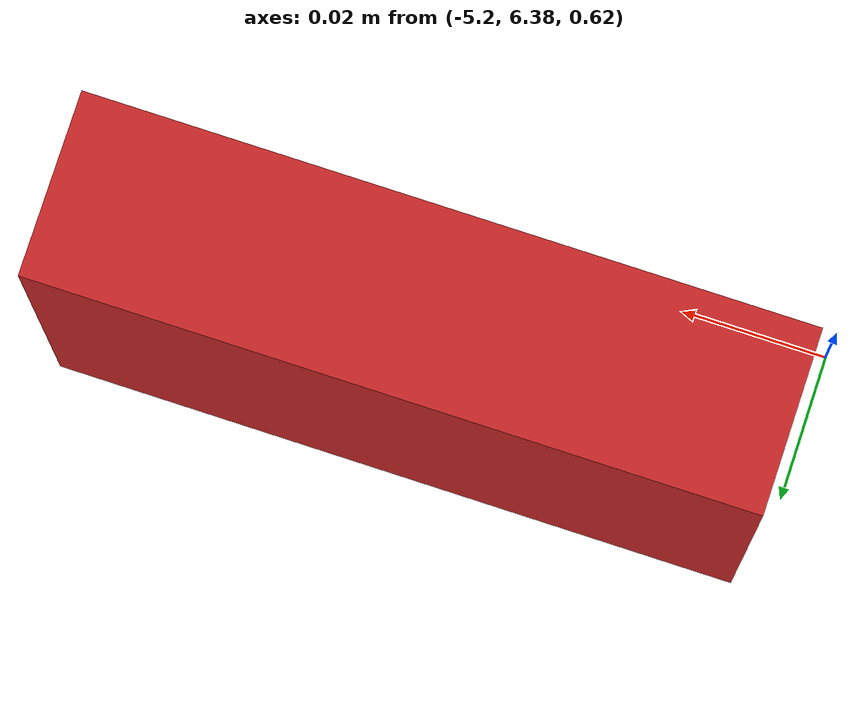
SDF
<sdf version="1.7">
 <world name="warehouse_world">
  <model name="ground_plane">
   <static>1</static>
   <link name="link">
    <collision name="collision">
     <geometry><plane><normal>0 0 1</normal><size>100 100</size></plane></geometry>
     <surface>
      <contact><collide_bitmask>65535</collide_bitmask></contact>
      <friction><ode><mu>100</mu><mu2>50</mu2></ode></friction>
     </surface>
    </collision>
    <visual name="visual">
     <cast_shadows>0</cast_shadows>
     <geometry><plane><normal>0 0 1</normal><size>100 100</size></plane></geometry>
     <material>
      <script><uri>file://media/materials/scripts/gazebo.material</uri><name>Gazebo/Grey</name></script>
     </material>
    </visual>
   </link>
  </model>
  <model name="red_3_5_right">
   <link name="link">
    <inertial>
     <mass>0.1</mass>
     <inertia><ixx>0.16667</ixx><ixy>0</ixy><ixz>0</ixz><iyy>0.16667</iyy><iyz>0</iyz><izz>0.16667</izz></inertia>
    </inertial>
    <visual name="visual">
     <geometry><box><size>0.09433 0.024 0.07</size></box></geometry>
     <material>
      <script><name>Gazebo/Red</name><uri>file://media/materials/scripts/gazebo.material</uri></script>
      <shader type="vertex"><normal_map>__default__</normal_map></shader>
     </material>
    </visual>
    <collision name="collision">
     <max_contacts>50</max_contacts>
     <geometry><box><size>0.09433 0.024 0.07</size></box></geometry>
     <surface>
      <friction>
       <ode><mu>0.998</mu><mu2>0.998</mu2><fdir1>0 0 0</fdir1><slip1>0</slip1><slip2>0</slip2></ode>
      </friction>
      <bounce><restitution_coefficient>0</restitution_coefficient><threshold>100000</threshold></bounce>
      <contact>
       <ode>
        <soft_cfm>0</soft_cfm>
        <soft_erp>0.2</soft_erp>
        <kp>100000</kp>
        <kd>1</kd>
        <max_vel>100</max_vel>
        <min_depth>0.001</min_depth>
       </ode>
      </contact>
     </surface>
    </collision>
   </link>
   <static>0</static>
   <allow_auto_disable>0</allow_auto_disable>
   <pose>-5.15 6.4 0.65 0 -0 0</pose>
  </model>
 </world>
</sdf>
